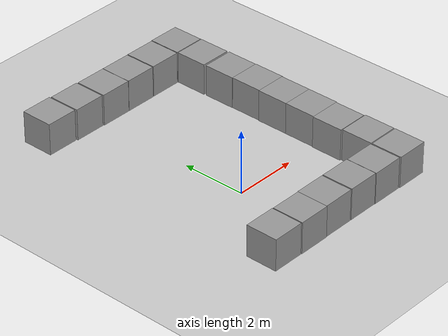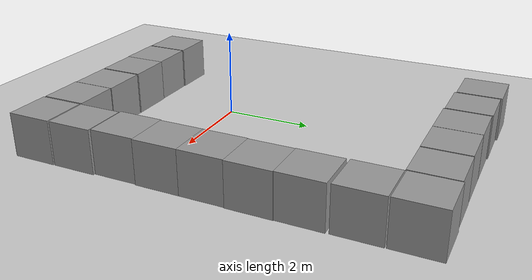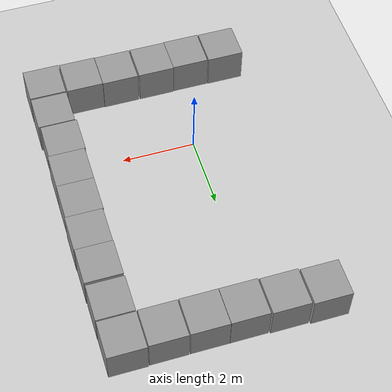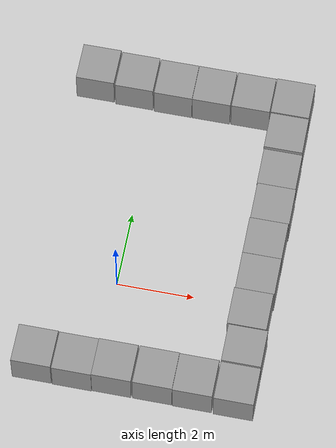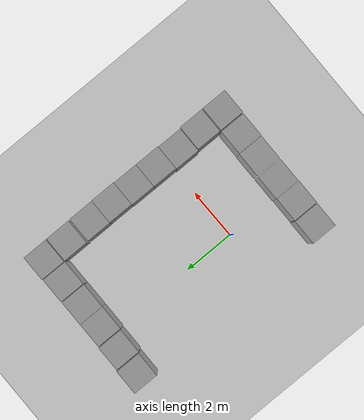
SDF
<sdf version="1.6">
 <world name="default">
  <light name="sun" type="directional">
   <pose>0 0 10 0 -0 0</pose>
   <diffuse>0.8 0.8 0.8 1</diffuse>
   <specular>0.1 0.1 0.1 1</specular>
   <attenuation>
    <range>1000</range>
    <constant>0.9</constant>
    <linear>0.01</linear>
    <quadratic>0.001</quadratic>
   </attenuation>
   <direction>-0.5 0.5 -1</direction>
  </light>
  <model name="ground_plane">
   <static>1</static>
   <link name="link">
    <collision name="collision">
     <geometry><plane><normal>0 0 1</normal><size>100 100</size></plane></geometry>
     <surface><friction><ode><mu>100</mu><mu2>50</mu2></ode></friction></surface>
    </collision>
    <visual name="visual">
     <cast_shadows>0</cast_shadows>
     <geometry><plane><normal>0 0 1</normal><size>100 100</size></plane></geometry>
     <material>
      <script><uri>file://media/materials/scripts/gazebo.material</uri><name>Gazebo/Grey</name></script>
     </material>
    </visual>
   </link>
  </model>
  <gravity>0 0 -9.8</gravity>
  <magnetic_field>6e-06 2.3e-05 -4.2e-05</magnetic_field>
  <atmosphere type="adiabatic"/>
  <physics name="default_physics" default="0" type="ode">
   <max_step_size>0.001</max_step_size>
   <real_time_factor>1</real_time_factor>
   <real_time_update_rate>1000</real_time_update_rate>
  </physics>
  <scene><ambient>0.4 0.4 0.4 1</ambient><background>0.7 0.7 0.7 1</background><shadows>1</shadows></scene>
  <spherical_coordinates>
   <surface_model>EARTH_WGS84</surface_model>
   <latitude_deg>0</latitude_deg>
   <longitude_deg>0</longitude_deg>
   <elevation>0</elevation>
   <heading_deg>0</heading_deg>
  </spherical_coordinates>
  <model name="unit_box_0">
   <pose>-1.55371 -2.4945 0.499995 -1e-05 0 0</pose>
   <link name="link">
    <inertial>
     <mass>1</mass>
     <inertia>
      <ixx>0.166667</ixx>
      <ixy>0</ixy>
      <ixz>0</ixz>
      <iyy>0.166667</iyy>
      <iyz>0</iyz>
      <izz>0.166667</izz>
     </inertia>
    </inertial>
    <collision name="collision"><geometry><box><size>1 1 1</size></box></geometry></collision>
    <visual name="visual">
     <geometry><box><size>1 1 1</size></box></geometry>
     <material>
      <script><name>Gazebo/Grey</name><uri>file://media/materials/scripts/gazebo.material</uri></script>
     </material>
    </visual>
   </link>
  </model>
  <model name="unit_box_0_clone">
   <pose>-0.526164 -2.50756 0.499995 0 1e-05 7.9e-05</pose>
   <link name="link">
    <inertial>
     <mass>1</mass>
     <inertia>
      <ixx>0.166667</ixx>
      <ixy>0</ixy>
      <ixz>0</ixz>
      <iyy>0.166667</iyy>
      <iyz>0</iyz>
      <izz>0.166667</izz>
     </inertia>
    </inertial>
    <collision name="collision"><geometry><box><size>1 1 1</size></box></geometry></collision>
    <visual name="visual">
     <geometry><box><size>1 1 1</size></box></geometry>
     <material>
      <script><name>Gazebo/Grey</name><uri>file://media/materials/scripts/gazebo.material</uri></script>
     </material>
    </visual>
   </link>
  </model>
  <model name="unit_box_0_clone_0">
   <pose>0.473837 -2.49323 0.499995 0 1e-05 8.1e-05</pose>
   <link name="link">
    <inertial>
     <mass>1</mass>
     <inertia>
      <ixx>0.166667</ixx>
      <ixy>0</ixy>
      <ixz>0</ixz>
      <iyy>0.166667</iyy>
      <iyz>0</iyz>
      <izz>0.166667</izz>
     </inertia>
    </inertial>
    <collision name="collision"><geometry><box><size>1 1 1</size></box></geometry></collision>
    <visual name="visual">
     <geometry><box><size>1 1 1</size></box></geometry>
     <material>
      <script><name>Gazebo/Grey</name><uri>file://media/materials/scripts/gazebo.material</uri></script>
     </material>
    </visual>
   </link>
  </model>
  <model name="unit_box_0_clone_1">
   <pose>1.5112 -2.4939 0.499995 0 1e-05 0</pose>
   <link name="link">
    <inertial>
     <mass>1</mass>
     <inertia>
      <ixx>0.166667</ixx>
      <ixy>0</ixy>
      <ixz>0</ixz>
      <iyy>0.166667</iyy>
      <iyz>0</iyz>
      <izz>0.166667</izz>
     </inertia>
    </inertial>
    <collision name="collision"><geometry><box><size>1 1 1</size></box></geometry></collision>
    <visual name="visual">
     <geometry><box><size>1 1 1</size></box></geometry>
     <material>
      <script><name>Gazebo/Grey</name><uri>file://media/materials/scripts/gazebo.material</uri></script>
     </material>
    </visual>
   </link>
  </model>
  <model name="unit_box_0_clone_1_clone">
   <pose>2.51579 -2.50791 0.499995 0 -1e-05 0</pose>
   <link name="link">
    <inertial>
     <mass>1</mass>
     <inertia>
      <ixx>0.166667</ixx>
      <ixy>0</ixy>
      <ixz>0</ixz>
      <iyy>0.166667</iyy>
      <iyz>0</iyz>
      <izz>0.166667</izz>
     </inertia>
    </inertial>
    <collision name="collision"><geometry><box><size>1 1 1</size></box></geometry></collision>
    <visual name="visual">
     <geometry><box><size>1 1 1</size></box></geometry>
     <material>
      <script><name>Gazebo/Grey</name><uri>file://media/materials/scripts/gazebo.material</uri></script>
     </material>
    </visual>
   </link>
  </model>
  <model name="unit_box_0_clone_1_clone_0">
   <pose>3.55649 -2.52677 0.499995 1e-05 -0 0</pose>
   <link name="link">
    <inertial>
     <mass>1</mass>
     <inertia>
      <ixx>0.166667</ixx>
      <ixy>0</ixy>
      <ixz>0</ixz>
      <iyy>0.166667</iyy>
      <iyz>0</iyz>
      <izz>0.166667</izz>
     </inertia>
    </inertial>
    <collision name="collision"><geometry><box><size>1 1 1</size></box></geometry></collision>
    <visual name="visual">
     <geometry><box><size>1 1 1</size></box></geometry>
     <material>
      <script><name>Gazebo/Grey</name><uri>file://media/materials/scripts/gazebo.material</uri></script>
     </material>
    </visual>
   </link>
  </model>
  <model name="unit_box_0_clone_1_clone_1">
   <pose>3.55235 -1.49185 0.499995 0 -1e-05 0</pose>
   <link name="link">
    <inertial>
     <mass>1</mass>
     <inertia>
      <ixx>0.166667</ixx>
      <ixy>0</ixy>
      <ixz>0</ixz>
      <iyy>0.166667</iyy>
      <iyz>0</iyz>
      <izz>0.166667</izz>
     </inertia>
    </inertial>
    <collision name="collision"><geometry><box><size>1 1 1</size></box></geometry></collision>
    <visual name="visual">
     <geometry><box><size>1 1 1</size></box></geometry>
     <material>
      <script><name>Gazebo/Grey</name><uri>file://media/materials/scripts/gazebo.material</uri></script>
     </material>
    </visual>
   </link>
  </model>
  <model name="unit_box_0_clone_1_clone_2">
   <pose>3.50916 -0.473622 0.499995 1e-05 -0 -4.4e-05</pose>
   <link name="link">
    <inertial>
     <mass>1</mass>
     <inertia>
      <ixx>0.166667</ixx>
      <ixy>0</ixy>
      <ixz>0</ixz>
      <iyy>0.166667</iyy>
      <iyz>0</iyz>
      <izz>0.166667</izz>
     </inertia>
    </inertial>
    <collision name="collision"><geometry><box><size>1 1 1</size></box></geometry></collision>
    <visual name="visual">
     <geometry><box><size>1 1 1</size></box></geometry>
     <material>
      <script><name>Gazebo/Grey</name><uri>file://media/materials/scripts/gazebo.material</uri></script>
     </material>
    </visual>
   </link>
  </model>
  <model name="unit_box_0_clone_1_clone_3">
   <pose>3.53284 0.526506 0.499995 9e-06 -0 0.000145</pose>
   <link name="link">
    <inertial>
     <mass>1</mass>
     <inertia>
      <ixx>0.166667</ixx>
      <ixy>0</ixy>
      <ixz>0</ixz>
      <iyy>0.166667</iyy>
      <iyz>0</iyz>
      <izz>0.166667</izz>
     </inertia>
    </inertial>
    <collision name="collision"><geometry><box><size>1 1 1</size></box></geometry></collision>
    <visual name="visual">
     <geometry><box><size>1 1 1</size></box></geometry>
     <material>
      <script><name>Gazebo/Grey</name><uri>file://media/materials/scripts/gazebo.material</uri></script>
     </material>
    </visual>
   </link>
  </model>
  <model name="unit_box_0_clone_1_clone_4">
   <pose>3.53407 1.52652 0.499995 -9e-06 0 0.000145</pose>
   <link name="link">
    <inertial>
     <mass>1</mass>
     <inertia>
      <ixx>0.166667</ixx>
      <ixy>0</ixy>
      <ixz>0</ixz>
      <iyy>0.166667</iyy>
      <iyz>0</iyz>
      <izz>0.166667</izz>
     </inertia>
    </inertial>
    <collision name="collision"><geometry><box><size>1 1 1</size></box></geometry></collision>
    <visual name="visual">
     <geometry><box><size>1 1 1</size></box></geometry>
     <material>
      <script><name>Gazebo/Grey</name><uri>file://media/materials/scripts/gazebo.material</uri></script>
     </material>
    </visual>
   </link>
  </model>
  <model name="unit_box_0_clone_1_clone_5">
   <pose>3.55098 2.52651 0.499995 9e-06 -0 0.000144</pose>
   <link name="link">
    <inertial>
     <mass>1</mass>
     <inertia>
      <ixx>0.166667</ixx>
      <ixy>0</ixy>
      <ixz>0</ixz>
      <iyy>0.166667</iyy>
      <iyz>0</iyz>
      <izz>0.166667</izz>
     </inertia>
    </inertial>
    <collision name="collision"><geometry><box><size>1 1 1</size></box></geometry></collision>
    <visual name="visual">
     <geometry><box><size>1 1 1</size></box></geometry>
     <material>
      <script><name>Gazebo/Grey</name><uri>file://media/materials/scripts/gazebo.material</uri></script>
     </material>
    </visual>
   </link>
  </model>
  <model name="unit_box_0_clone_1_clone_6">
   <pose>3.53937 3.52652 0.499995 -1e-05 0 0.000145</pose>
   <link name="link">
    <inertial>
     <mass>1</mass>
     <inertia>
      <ixx>0.166667</ixx>
      <ixy>0</ixy>
      <ixz>0</ixz>
      <iyy>0.166667</iyy>
      <iyz>0</iyz>
      <izz>0.166667</izz>
     </inertia>
    </inertial>
    <collision name="collision"><geometry><box><size>1 1 1</size></box></geometry></collision>
    <visual name="visual">
     <geometry><box><size>1 1 1</size></box></geometry>
     <material>
      <script><name>Gazebo/Grey</name><uri>file://media/materials/scripts/gazebo.material</uri></script>
     </material>
    </visual>
   </link>
  </model>
  <model name="unit_box_0_clone_1_clone_7">
   <pose>3.52619 4.59169 0.499995 0 -1e-05 0</pose>
   <link name="link">
    <inertial>
     <mass>1</mass>
     <inertia>
      <ixx>0.166667</ixx>
      <ixy>0</ixy>
      <ixz>0</ixz>
      <iyy>0.166667</iyy>
      <iyz>0</iyz>
      <izz>0.166667</izz>
     </inertia>
    </inertial>
    <collision name="collision"><geometry><box><size>1 1 1</size></box></geometry></collision>
    <visual name="visual">
     <geometry><box><size>1 1 1</size></box></geometry>
     <material>
      <script><name>Gazebo/Grey</name><uri>file://media/materials/scripts/gazebo.material</uri></script>
     </material>
    </visual>
   </link>
  </model>
  <model name="unit_box_0_clone_1_clone_8">
   <pose>3.51933 5.61943 0.499995 1e-05 -0 0</pose>
   <link name="link">
    <inertial>
     <mass>1</mass>
     <inertia>
      <ixx>0.166667</ixx>
      <ixy>0</ixy>
      <ixz>0</ixz>
      <iyy>0.166667</iyy>
      <iyz>0</iyz>
      <izz>0.166667</izz>
     </inertia>
    </inertial>
    <collision name="collision"><geometry><box><size>1 1 1</size></box></geometry></collision>
    <visual name="visual">
     <geometry><box><size>1 1 1</size></box></geometry>
     <material>
      <script><name>Gazebo/Grey</name><uri>file://media/materials/scripts/gazebo.material</uri></script>
     </material>
    </visual>
   </link>
  </model>
  <model name="unit_box_0_clone_1_clone_9">
   <pose>2.49417 5.59969 0.499995 0 -1e-05 0</pose>
   <link name="link">
    <inertial>
     <mass>1</mass>
     <inertia>
      <ixx>0.166667</ixx>
      <ixy>0</ixy>
      <ixz>0</ixz>
      <iyy>0.166667</iyy>
      <iyz>0</iyz>
      <izz>0.166667</izz>
     </inertia>
    </inertial>
    <collision name="collision"><geometry><box><size>1 1 1</size></box></geometry></collision>
    <visual name="visual">
     <geometry><box><size>1 1 1</size></box></geometry>
     <material>
      <script><name>Gazebo/Grey</name><uri>file://media/materials/scripts/gazebo.material</uri></script>
     </material>
    </visual>
   </link>
  </model>
  <model name="unit_box_0_clone_1_clone_10">
   <pose>1.46428 5.59449 0.499995 1e-05 -0 0</pose>
   <link name="link">
    <inertial>
     <mass>1</mass>
     <inertia>
      <ixx>0.166667</ixx>
      <ixy>0</ixy>
      <ixz>0</ixz>
      <iyy>0.166667</iyy>
      <iyz>0</iyz>
      <izz>0.166667</izz>
     </inertia>
    </inertial>
    <collision name="collision"><geometry><box><size>1 1 1</size></box></geometry></collision>
    <visual name="visual">
     <geometry><box><size>1 1 1</size></box></geometry>
     <material>
      <script><name>Gazebo/Grey</name><uri>file://media/materials/scripts/gazebo.material</uri></script>
     </material>
    </visual>
   </link>
  </model>
  <model name="unit_box_0_clone_1_clone_11">
   <pose>0.458845 5.59499 0.499995 0 -1e-05 0</pose>
   <link name="link">
    <inertial>
     <mass>1</mass>
     <inertia>
      <ixx>0.166667</ixx>
      <ixy>0</ixy>
      <ixz>0</ixz>
      <iyy>0.166667</iyy>
      <iyz>0</iyz>
      <izz>0.166667</izz>
     </inertia>
    </inertial>
    <collision name="collision"><geometry><box><size>1 1 1</size></box></geometry></collision>
    <visual name="visual">
     <geometry><box><size>1 1 1</size></box></geometry>
     <material>
      <script><name>Gazebo/Grey</name><uri>file://media/materials/scripts/gazebo.material</uri></script>
     </material>
    </visual>
   </link>
  </model>
  <model name="unit_box_0_clone_1_clone_12">
   <pose>-0.576244 5.61926 0.499995 1e-05 -0 0</pose>
   <link name="link">
    <inertial>
     <mass>1</mass>
     <inertia>
      <ixx>0.166667</ixx>
      <ixy>0</ixy>
      <ixz>0</ixz>
      <iyy>0.166667</iyy>
      <iyz>0</iyz>
      <izz>0.166667</izz>
     </inertia>
    </inertial>
    <collision name="collision"><geometry><box><size>1 1 1</size></box></geometry></collision>
    <visual name="visual">
     <geometry><box><size>1 1 1</size></box></geometry>
     <material>
      <script><name>Gazebo/Grey</name><uri>file://media/materials/scripts/gazebo.material</uri></script>
     </material>
    </visual>
   </link>
  </model>
  <model name="unit_box_0_clone_1_clone_13">
   <pose>-1.61553 5.65777 0.499995 0 -1e-05 0</pose>
   <link name="link">
    <inertial>
     <mass>1</mass>
     <inertia>
      <ixx>0.166667</ixx>
      <ixy>0</ixy>
      <ixz>0</ixz>
      <iyy>0.166667</iyy>
      <iyz>0</iyz>
      <izz>0.166667</izz>
     </inertia>
    </inertial>
    <collision name="collision"><geometry><box><size>1 1 1</size></box></geometry></collision>
    <visual name="visual">
     <geometry><box><size>1 1 1</size></box></geometry>
     <material>
      <script><name>Gazebo/Grey</name><uri>file://media/materials/scripts/gazebo.material</uri></script>
     </material>
    </visual>
   </link>
  </model>
 </world>
</sdf>
